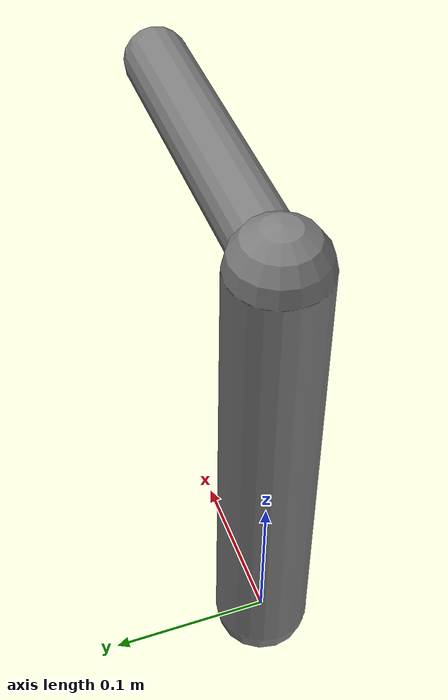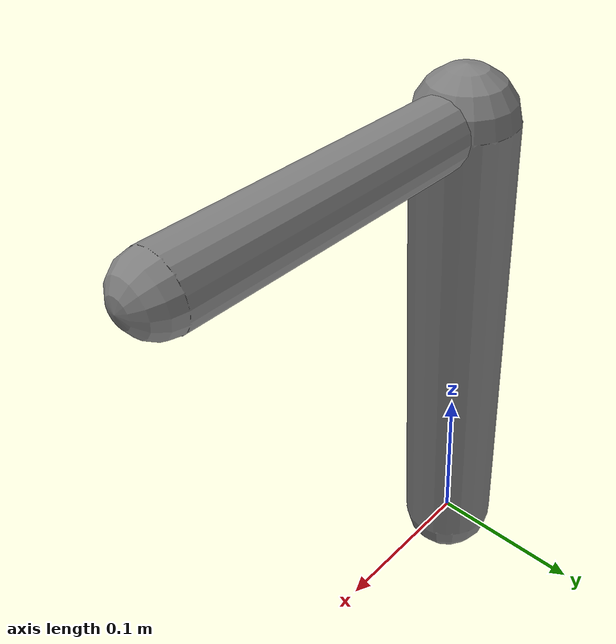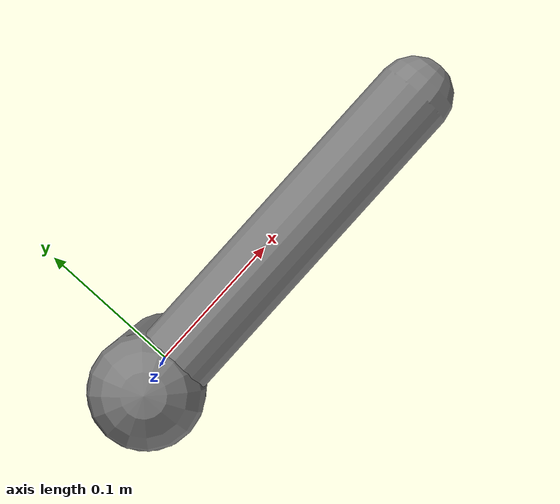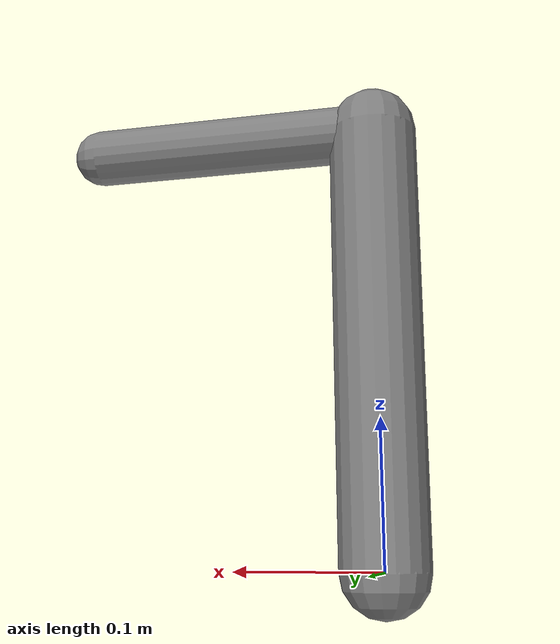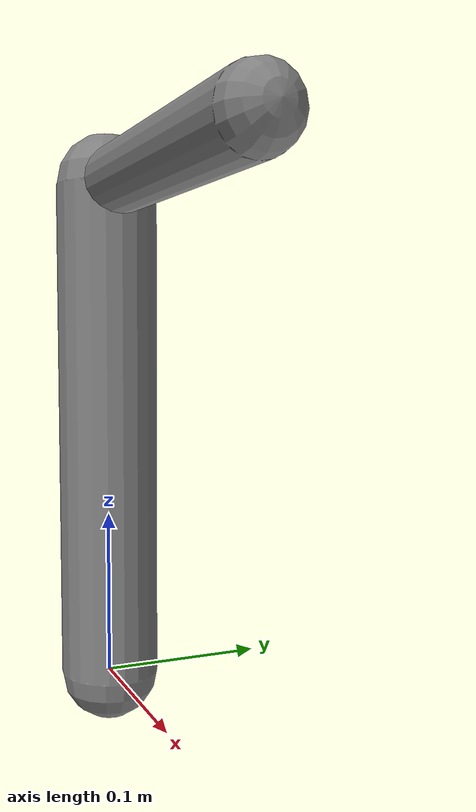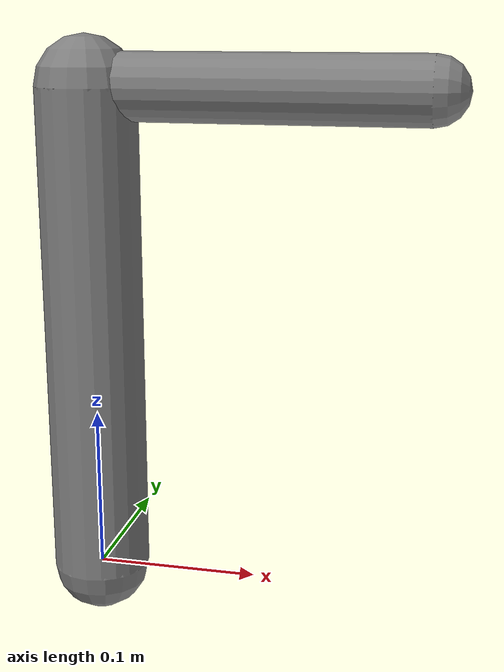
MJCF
<mujoco model="arm">
  <compiler angle="radian"/>
  <worldbody>
    <body name="base" pos="0 0 0">
      <geom name="post" type="capsule" fromto="0 0 0 0 0 0.3" size="0.03"/>
      <body name="link" pos="0 0 0.3">
        <joint name="hinge" type="hinge" axis="0 1 0" range="-1.5 1.5"/>
        <geom name="bar" type="capsule" fromto="0 0 0 0.2 0 0" size="0.02"/>
        <site name="ee" pos="0.2 0 0" size="0.01"/>
      </body>
    </body>
  </worldbody>
  <actuator>
    <motor name="m" joint="hinge" gear="5"/>
  </actuator>
</mujoco>
